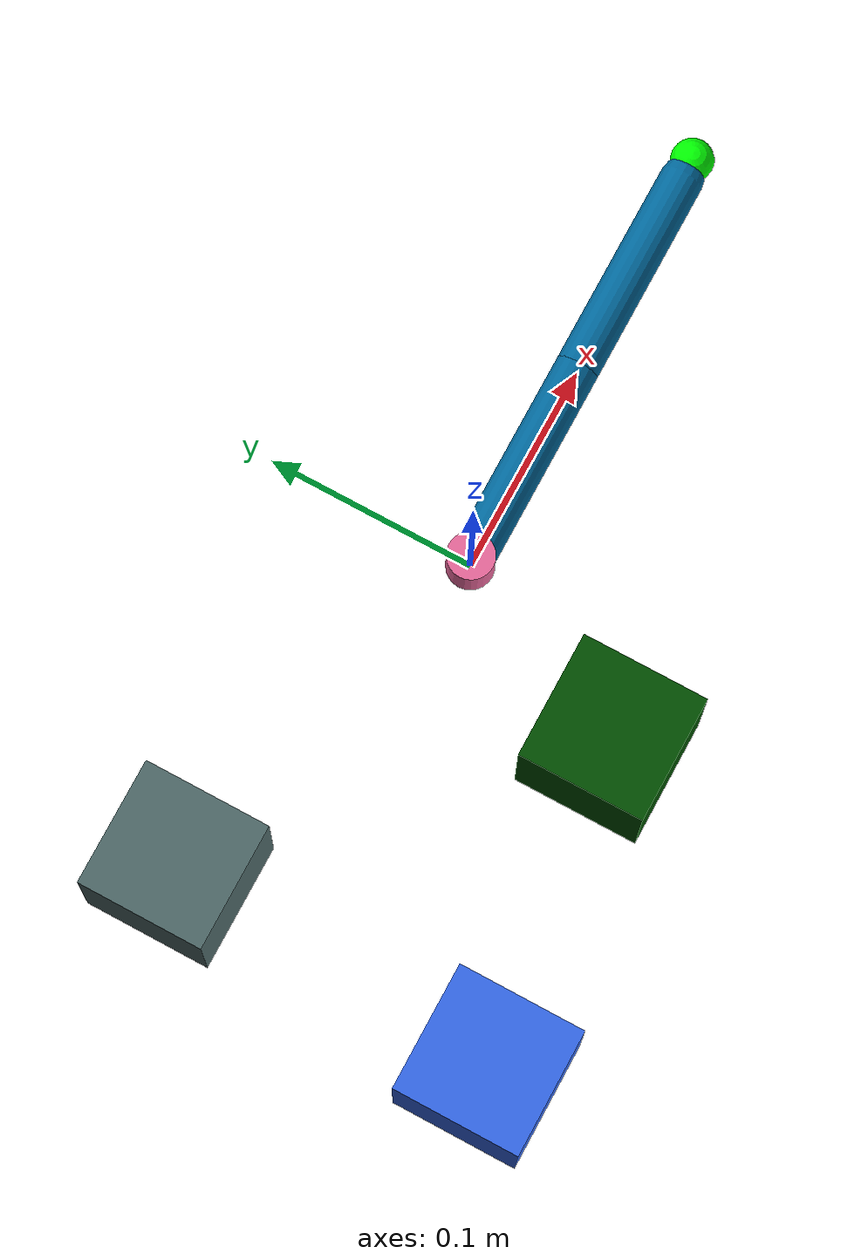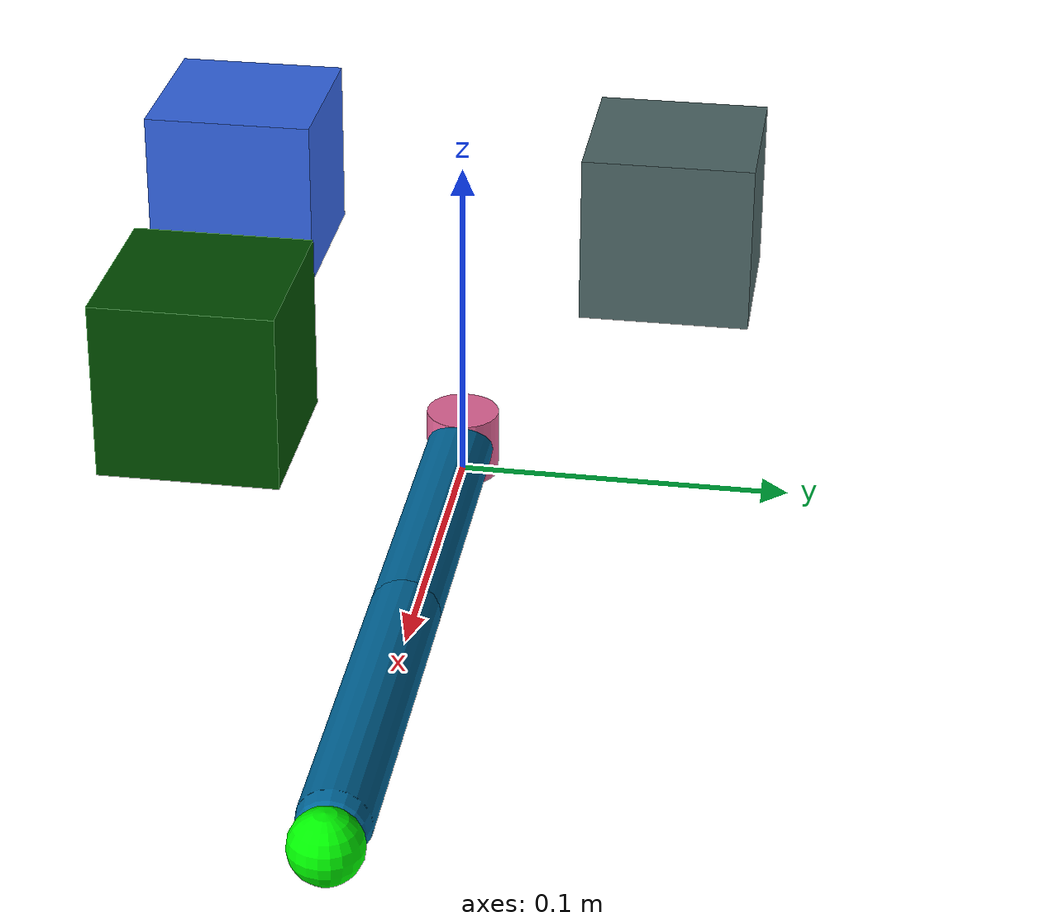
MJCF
<mujoco model="reacher">
	<compiler inertiafromgeom="true" angle="radian"/>
	<default >
		<joint armature="1" damping="1" limited="true"/>
		<geom contype="0" friction="1 0.1 0.1" rgba="0.7 0.7 0 1"/>
	</default>
	<option integrator="RK4" gravity="0 0 -9.81" timestep="0.01"/>
	<worldbody >
		<geom conaffinity="0" name="root" contype="0" fromto="0 0 0 0 0 0.02" rgba="0.9 0.4 0.6 1" type="cylinder" size=".011"/>
		<body name="body0" pos="0 0 .01">
			<geom name="link0" type="capsule" fromto="0 0 0 0.1 0 0" rgba="0.0 0.4 0.6 1.0" size=".01"/>
			<joint limited="true" name="joint0" pos="0 0 0" range="-3.14 3.14" type="hinge" axis="0 0 1"/>
			<body name="body1" pos="0.1 0 0">
				<joint limited="true" name="joint1" pos="0 0 0" range="-3.0 3.0" type="hinge" axis="0 0 1"/>
				<geom name="link1" type="capsule" fromto="0 0 0 0.1 0 0" rgba="0.0 0.4 0.6 1.0" size=".01"/>
				<body name="fingertip" pos="0.11 0 0">
					<geom name="fingertip" pos="0 0 0" contype="0" rgba="0 1 0 1" type="sphere" size=".01"/>
				</body>
			</body>
		</body>
		<body name="target" pos="-0.192634557332 -0.111767110236 0.01">
			<geom conaffinity="0" density="0.00001" contype="0" rgba="0.2 0.4 0.9 1.0" type="box" size="0.03 0.03 0.03"/>
		</body>
		<body name="cube_0" pos="-0.0417062049693 -0.0911661862182 0.01">
			<geom conaffinity="0" density="0.00001" contype="0" rgba="0.0 0.3 0.0 1.0" type="box" size="0.03 0.03 0.03"/>
		</body>
		<body name="cube_1" pos="-0.179492612119 0.0474767557077 0.01">
			<geom conaffinity="0" density="0.00001" contype="0" rgba="0.3 0.4 0.4 1.0" type="box" size="0.03 0.03 0.03"/>
		</body>
	</worldbody>
	<actuator >
		<motor ctrllimited="true" joint="joint0" ctrlrange="-1.0 1.0" gear="200.0"/>
		<motor ctrllimited="true" joint="joint1" ctrlrange="-1.0 1.0" gear="200.0"/>
	</actuator>
</mujoco>
